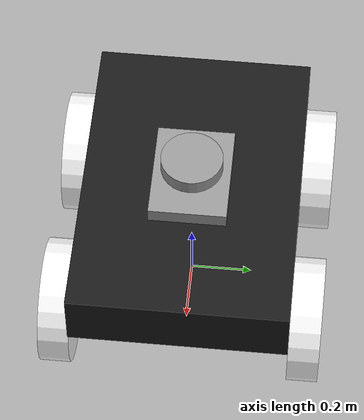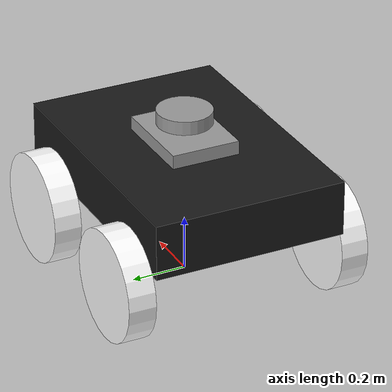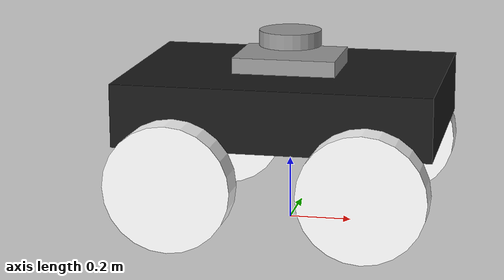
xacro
<?xml version="1.0"?>
<robot name="waverover">

    <material name="black_color">
        <color rgba="0.1 0.1 0.1 1"/>
    </material>

    <material name="gray">
        <color rgba="0.6 0.6 0.6 1"/>
    </material>

    <material name="white">
        <color rgba="1 1 1 1"/>
    </material>

    <link name="base">
        <visual>
            <geometry>
                <box size="1.0 0.7 0.2"/> </geometry>
            <origin xyz="0 0 0.4" rpy="0 0 0"/>
            <material name="black_color"/>
        </visual>
    </link>

    <link name="wheel1">
        <visual>
            <geometry>
                <cylinder length="0.1" radius="0.2"/>
            </geometry>
            <origin xyz="0 0 0.2" rpy="1.5707 0 0"/>
            <material name="white"/>
        </visual>
    </link>

    <link name="wheel2">
        <visual>
            <geometry>
                <cylinder length="0.1" radius="0.2"/>
            </geometry>
            <origin xyz="0 0 0.2" rpy="1.5707 0 0"/>
            <material name="white"/>
        </visual>
    </link>

    <link name="wheel3">
        <visual>
            <geometry>
                <cylinder length="0.1" radius="0.2"/>
            </geometry>
            <origin xyz="0 0 0.2" rpy="1.5707 0 0"/>
            <material name="white"/>
        </visual>
    </link>

    <link name="wheel4">
        <visual>
            <geometry>
                <cylinder length="0.1" radius="0.2"/>
            </geometry>
            <origin xyz="0 0 0.2" rpy="1.5707 0 0"/>
            <material name="white"/>
        </visual>
    </link>

    <link name="lidar_base">
        <visual>
            <geometry>
                <box size="0.33 0.25 0.10"/> </geometry>
            <origin xyz="0 0 0.4" rpy="0 0 0"/>
            <material name="gray"/>
        </visual>
    </link>

    <link name="lidar">
        <visual>
            <geometry>
                <cylinder length="0.05" radius="0.1"/>
            </geometry>
            <origin xyz="0 0 0.4" rpy="0 0 0"/>
            <material name="gray"/>
        </visual>
    </link>

    <joint name="joint_wheel1" type="continuous">
        <parent link="base"/>
        <child link="wheel1"/>
        <origin xyz="0.3 0.4 0" rpy="0 0 0"/> <axis xyz="0 1 0"/>
    </joint>

    <joint name="joint_wheel2" type="continuous">
        <parent link="base"/>
        <child link="wheel2"/>
        <origin xyz="0.3 -0.4 0" rpy="0 0 0"/>
        <axis xyz="0 1 0"/>
    </joint>

    <joint name="joint_wheel3" type="continuous">
        <parent link="base"/>
        <child link="wheel3"/>
        <origin xyz="-0.3 0.4 0" rpy="0 0 0"/>
        <axis xyz="0 1 0"/>
    </joint>

    <joint name="joint_wheel4" type="continuous">
        <parent link="base"/>
        <child link="wheel4"/>
        <origin xyz="-0.3 -0.4 0" rpy="0 0 0"/>
        <axis xyz="0 1 0"/>
    </joint>
    <joint name="joint_base_lidar" type="fixed">
        <parent link="base"/>
        <child link="lidar_base"/>
        <origin xyz="0 0 0.1" rpy="0 0 0"/>
        <axis xyz="0 0 0"/>
    </joint>
    <joint name="joint_lidar" type="fixed">
        <parent link="lidar_base"/>
        <child link="lidar"/>
        <origin xyz="0 0 0.1" rpy="0 0 0"/>
        <axis xyz="0 0 0"/>
    </joint>

</robot>
